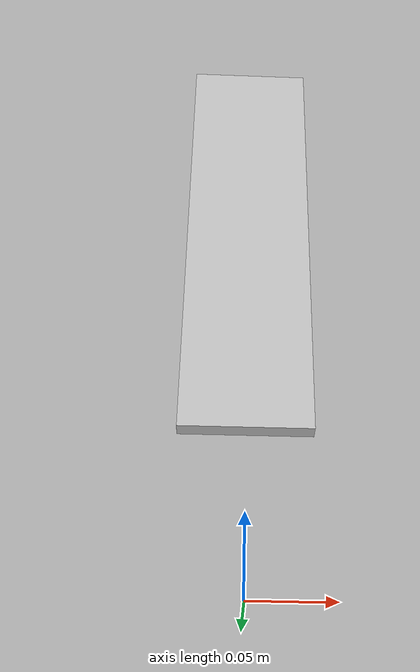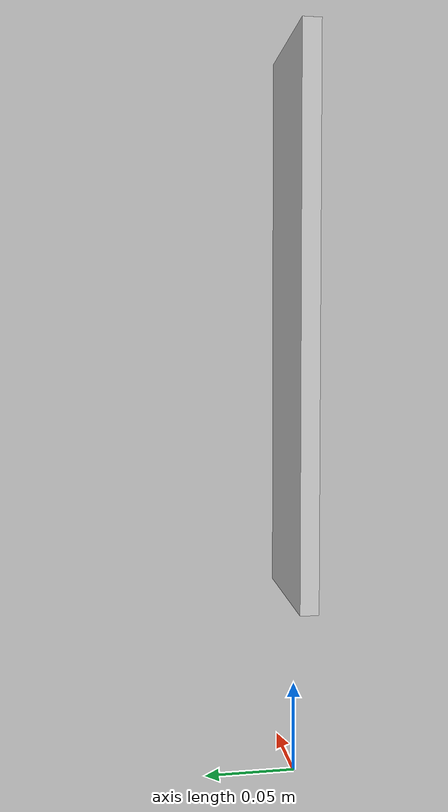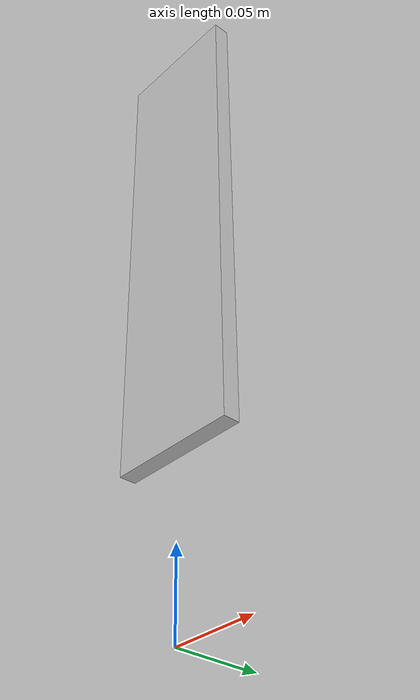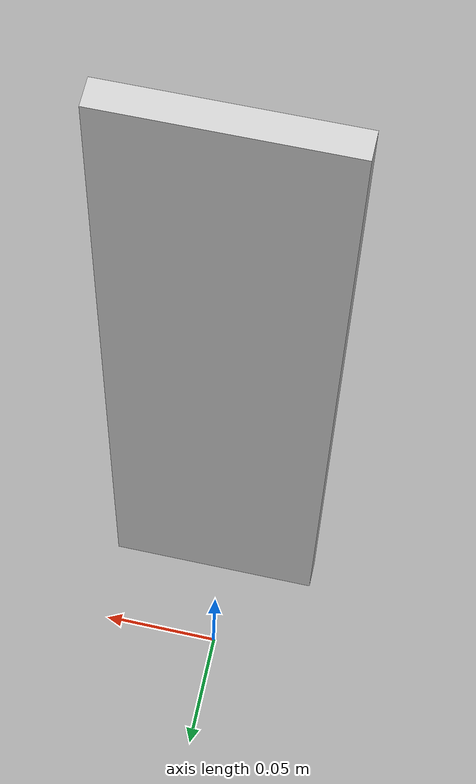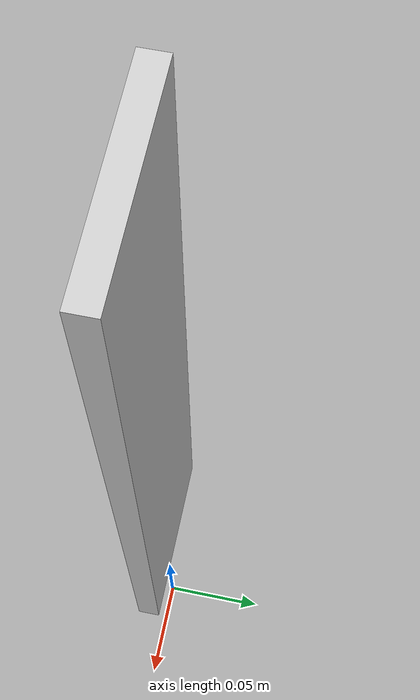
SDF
<?xml version="1.0" ?>
<sdf version="1.5">
  <model name="ro2">
    <static>true</static>
    <link name="link">
      <visual name="visual">
        <geometry>
          <mesh>
            <uri>model://ro2/meshes/ro2.dae</uri>
          </mesh>
        </geometry>
      </visual>

      <collision name="collision">
        <geometry>
          <box>
            <size>1.0 0.1 0.5</size>
          </box>
        </geometry>
      </collision>
    </link>
  </model>
</sdf>
